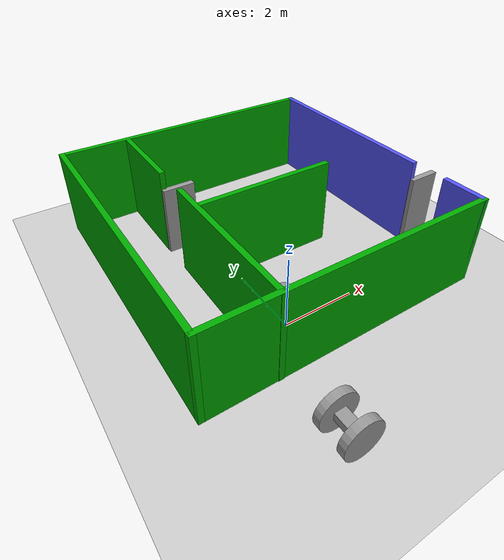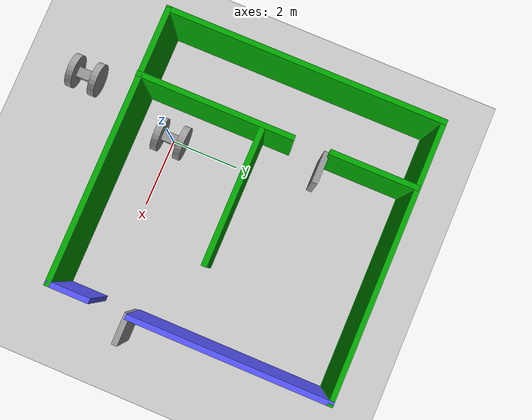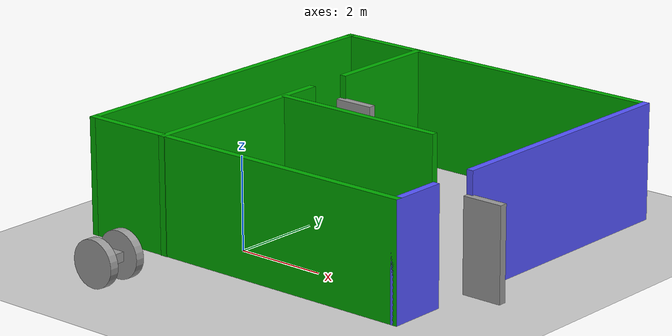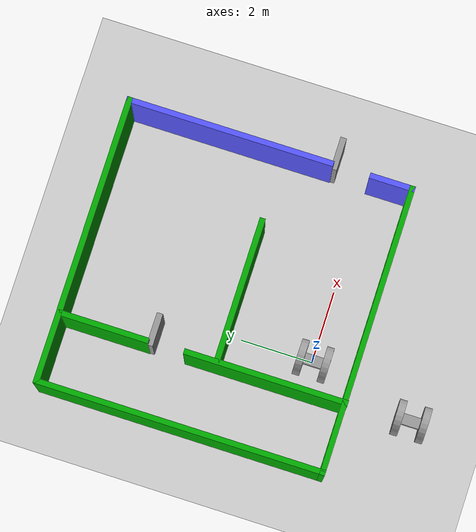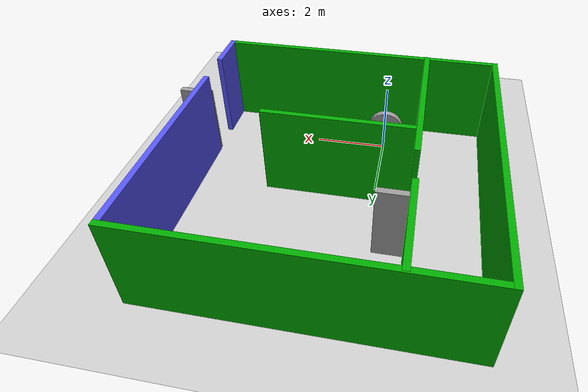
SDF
<sdf version="1.6">
 <world name="default">
  <plugin name="hello" filename="libproject1.so"/>
  <light name="sun" type="directional">
   <pose>0 0 10 0 -0 0</pose>
   <diffuse>0.8 0.8 0.8 1</diffuse>
   <specular>0.1 0.1 0.1 1</specular>
   <attenuation>
    <range>1000</range>
    <constant>0.9</constant>
    <linear>0.01</linear>
    <quadratic>0.001</quadratic>
   </attenuation>
   <direction>-0.5 0.5 -1</direction>
  </light>
  <model name="ground_plane">
   <static>1</static>
   <link name="link">
    <collision name="collision">
     <geometry><plane><normal>0 0 1</normal><size>100 100</size></plane></geometry>
     <surface><friction><ode><mu>100</mu><mu2>50</mu2></ode></friction></surface>
    </collision>
    <visual name="visual">
     <cast_shadows>0</cast_shadows>
     <geometry><plane><normal>0 0 1</normal><size>100 100</size></plane></geometry>
     <material>
      <script><uri>file://media/materials/scripts/gazebo.material</uri><name>Gazebo/Grey</name></script>
     </material>
    </visual>
   </link>
  </model>
  <gravity>0 0 -9.8</gravity>
  <magnetic_field>6e-06 2.3e-05 -4.2e-05</magnetic_field>
  <atmosphere type="adiabatic"/>
  <physics name="default_physics" default="0" type="ode">
   <max_step_size>0.001</max_step_size>
   <real_time_factor>1</real_time_factor>
   <real_time_update_rate>1000</real_time_update_rate>
  </physics>
  <scene><ambient>0.4 0.4 0.4 1</ambient><background>0.7 0.7 0.7 1</background><shadows>1</shadows></scene>
  <spherical_coordinates>
   <surface_model>EARTH_WGS84</surface_model>
   <latitude_deg>0</latitude_deg>
   <longitude_deg>0</longitude_deg>
   <elevation>0</elevation>
   <heading_deg>0</heading_deg>
  </spherical_coordinates>
  <model name="mymodel">
   <link name="link_0">
    <inertial>
     <mass>1</mass>
     <inertia>
      <ixx>0.166667</ixx>
      <ixy>0</ixy>
      <ixz>0</ixz>
      <iyy>0.166667</iyy>
      <iyz>0</iyz>
      <izz>0.166667</izz>
     </inertia>
    </inertial>
    <visual name="visual">
     <geometry><box><size>0.3 0.5 0.2</size></box></geometry>
     <material>
      <lighting>1</lighting>
      <script><uri>file://media/materials/scripts/gazebo.material</uri><name>Gazebo/Grey</name></script>
      <ambient>0.3 0.3 0.3 1</ambient>
      <diffuse>0.7 0.7 0.7 1</diffuse>
      <specular>0.01 0.01 0.01 1</specular>
      <emissive>0 0 0 1</emissive>
      <shader type="vertex"><normal_map>__default__</normal_map></shader>
     </material>
    </visual>
    <collision name="collision">
     <geometry><box><size>0.3 0.5 0.2</size></box></geometry>
     <surface>
      <friction>
       <ode><mu>1</mu><mu2>1</mu2><fdir1>0 0 0</fdir1><slip1>0</slip1><slip2>0</slip2></ode>
       <torsional>
        <coefficient>1</coefficient>
        <patch_radius>0</patch_radius>
        <surface_radius>0</surface_radius>
        <use_patch_radius>1</use_patch_radius>
        <ode><slip>0</slip></ode>
       </torsional>
      </friction>
      <bounce><restitution_coefficient>0</restitution_coefficient><threshold>1e+06</threshold></bounce>
      <contact>
       <collide_without_contact>0</collide_without_contact>
       <collide_without_contact_bitmask>1</collide_without_contact_bitmask>
       <collide_bitmask>1</collide_bitmask>
       <ode>
        <soft_cfm>0</soft_cfm>
        <soft_erp>0.2</soft_erp>
        <kp>1e+13</kp>
        <kd>1</kd>
        <max_vel>0.01</max_vel>
        <min_depth>0</min_depth>
       </ode>
       <bullet>
        <split_impulse>1</split_impulse>
        <split_impulse_penetration_threshold>-0.01</split_impulse_penetration_threshold>
        <soft_cfm>0</soft_cfm>
        <soft_erp>0.2</soft_erp>
        <kp>1e+13</kp>
        <kd>1</kd>
       </bullet>
      </contact>
     </surface>
    </collision>
   </link>
   <link name="link_1">
    <pose>0 -0.350298 0 1.5702 -0 0</pose>
    <inertial>
     <mass>1</mass>
     <inertia><ixx>0.145833</ixx><ixy>0</ixy><ixz>0</ixz><iyy>0.145833</iyy><iyz>0</iyz><izz>0.125</izz></inertia>
    </inertial>
    <visual name="visual">
     <geometry><cylinder><radius>0.5</radius><length>0.2</length></cylinder></geometry>
     <material>
      <lighting>1</lighting>
      <script><uri>file://media/materials/scripts/gazebo.material</uri><name>Gazebo/Grey</name></script>
      <ambient>0.3 0.3 0.3 1</ambient>
      <diffuse>0.7 0.7 0.7 1</diffuse>
      <specular>0.01 0.01 0.01 1</specular>
      <emissive>0 0 0 1</emissive>
      <shader type="vertex"><normal_map>__default__</normal_map></shader>
     </material>
    </visual>
    <collision name="collision">
     <geometry><cylinder><radius>0.5</radius><length>0.2</length></cylinder></geometry>
     <surface>
      <friction>
       <ode><mu>1</mu><mu2>1</mu2><fdir1>0 0 0</fdir1><slip1>0</slip1><slip2>0</slip2></ode>
       <torsional>
        <coefficient>1</coefficient>
        <patch_radius>0</patch_radius>
        <surface_radius>0</surface_radius>
        <use_patch_radius>1</use_patch_radius>
        <ode><slip>0</slip></ode>
       </torsional>
      </friction>
      <bounce><restitution_coefficient>0</restitution_coefficient><threshold>1e+06</threshold></bounce>
      <contact>
       <collide_without_contact>0</collide_without_contact>
       <collide_without_contact_bitmask>1</collide_without_contact_bitmask>
       <collide_bitmask>1</collide_bitmask>
       <ode>
        <soft_cfm>0</soft_cfm>
        <soft_erp>0.2</soft_erp>
        <kp>1e+13</kp>
        <kd>1</kd>
        <max_vel>0.01</max_vel>
        <min_depth>0</min_depth>
       </ode>
       <bullet>
        <split_impulse>1</split_impulse>
        <split_impulse_penetration_threshold>-0.01</split_impulse_penetration_threshold>
        <soft_cfm>0</soft_cfm>
        <soft_erp>0.2</soft_erp>
        <kp>1e+13</kp>
        <kd>1</kd>
       </bullet>
      </contact>
     </surface>
    </collision>
   </link>
   <link name="link_1_clone">
    <pose>0 0.350298 0 1.5702 -0 0</pose>
    <inertial>
     <mass>1</mass>
     <inertia><ixx>0.145833</ixx><ixy>0</ixy><ixz>0</ixz><iyy>0.145833</iyy><iyz>0</iyz><izz>0.125</izz></inertia>
    </inertial>
    <visual name="visual">
     <geometry><cylinder><radius>0.5</radius><length>0.2</length></cylinder></geometry>
     <material>
      <lighting>1</lighting>
      <script><uri>file://media/materials/scripts/gazebo.material</uri><name>Gazebo/Grey</name></script>
      <ambient>0.3 0.3 0.3 1</ambient>
      <diffuse>0.7 0.7 0.7 1</diffuse>
      <specular>0.01 0.01 0.01 1</specular>
      <emissive>0 0 0 1</emissive>
      <shader type="vertex"><normal_map>__default__</normal_map></shader>
     </material>
    </visual>
    <collision name="collision">
     <geometry><cylinder><radius>0.5</radius><length>0.2</length></cylinder></geometry>
     <surface>
      <friction>
       <ode><mu>1</mu><mu2>1</mu2><fdir1>0 0 0</fdir1><slip1>0</slip1><slip2>0</slip2></ode>
       <torsional>
        <coefficient>1</coefficient>
        <patch_radius>0</patch_radius>
        <surface_radius>0</surface_radius>
        <use_patch_radius>1</use_patch_radius>
        <ode><slip>0</slip></ode>
       </torsional>
      </friction>
      <bounce><restitution_coefficient>0</restitution_coefficient><threshold>1e+06</threshold></bounce>
      <contact>
       <collide_without_contact>0</collide_without_contact>
       <collide_without_contact_bitmask>1</collide_without_contact_bitmask>
       <collide_bitmask>1</collide_bitmask>
       <ode>
        <soft_cfm>0</soft_cfm>
        <soft_erp>0.2</soft_erp>
        <kp>1e+13</kp>
        <kd>1</kd>
        <max_vel>0.01</max_vel>
        <min_depth>0</min_depth>
       </ode>
       <bullet>
        <split_impulse>1</split_impulse>
        <split_impulse_penetration_threshold>-0.01</split_impulse_penetration_threshold>
        <soft_cfm>0</soft_cfm>
        <soft_erp>0.2</soft_erp>
        <kp>1e+13</kp>
        <kd>1</kd>
       </bullet>
      </contact>
     </surface>
    </collision>
   </link>
   <joint name="link_0_JOINT_0" type="revolute">
    <parent>link_0</parent>
    <child>link_1</child>
    <axis>
     <xyz>0 0 1</xyz>
     <use_parent_model_frame>0</use_parent_model_frame>
     <limit>
      <lower>-1.79769e+308</lower>
      <upper>1.79769e+308</upper>
      <effort>-1</effort>
      <velocity>-1</velocity>
     </limit>
     <dynamics>
      <spring_reference>0</spring_reference>
      <spring_stiffness>0</spring_stiffness>
      <damping>0</damping>
     </dynamics>
    </axis>
    <physics>
     <ode><limit><cfm>0</cfm><erp>0.2</erp></limit><suspension><cfm>0</cfm><erp>0.2</erp></suspension></ode>
    </physics>
   </joint>
   <joint name="link_0_JOINT_2" type="revolute">
    <parent>link_0</parent>
    <child>link_1_clone</child>
    <axis>
     <xyz>0 0 1</xyz>
     <use_parent_model_frame>0</use_parent_model_frame>
     <limit>
      <lower>-1.79769e+308</lower>
      <upper>1.79769e+308</upper>
      <effort>-1</effort>
      <velocity>-1</velocity>
     </limit>
     <dynamics>
      <spring_reference>0</spring_reference>
      <spring_stiffness>0</spring_stiffness>
      <damping>0</damping>
     </dynamics>
    </axis>
    <physics>
     <ode><limit><cfm>0</cfm><erp>0.2</erp></limit><suspension><cfm>0</cfm><erp>0.2</erp></suspension></ode>
    </physics>
   </joint>
   <static>0</static>
   <pose>0 -0.024345 0.500059 1e-06 -0 0</pose>
  </model>
  <model name="mybuilding">
   <pose>1.005 2.76825 0 0 -0 0</pose>
   <link name="Door_0">
    <collision name="Door_0_Collision">
     <geometry><box><size>0.9 0.17 2</size></box></geometry>
     <pose>0 0 1 0 -0 0</pose>
    </collision>
    <visual name="Door_0_Visual">
     <pose>0 0 1 0 -0 0</pose>
     <geometry><box><size>0.9 0.17 2</size></box></geometry>
     <material>
      <script><uri>file://media/materials/scripts/gazebo.material</uri><name>Gazebo/Grey</name></script>
     </material>
    </visual>
    <pose>-1.64471 1.42964 0 0 -0 0</pose>
   </link>
   <link name="Door_2">
    <collision name="Door_2_Collision">
     <geometry><box><size>0.9 0.17 2</size></box></geometry>
     <pose>0 0 1 0 -0 0</pose>
    </collision>
    <visual name="Door_2_Visual">
     <pose>0 0 1 0 -0 0</pose>
     <geometry><box><size>0.9 0.17 2</size></box></geometry>
     <material>
      <script><uri>file://media/materials/scripts/gazebo.material</uri><name>Gazebo/Grey</name></script>
     </material>
    </visual>
    <pose>4.32193 -1.77573 0 0 -0 0</pose>
   </link>
   <link name="Wall_0">
    <collision name="Wall_0_Collision">
     <geometry><box><size>8 0.15 2.5</size></box></geometry>
     <pose>0 0 1.25 0 -0 0</pose>
    </collision>
    <visual name="Wall_0_Visual">
     <pose>0 0 1.25 0 -0 0</pose>
     <geometry><box><size>8 0.15 2.5</size></box></geometry>
     <material>
      <script><uri>file://media/materials/scripts/gazebo.material</uri><name>Gazebo/Grey</name></script>
      <ambient>0 0.666667 0 1</ambient>
     </material>
    </visual>
    <pose>-3.925 0.006746 0 0 -0 1.5708</pose>
   </link>
   <link name="Wall_1">
    <collision name="Wall_1_Collision">
     <geometry><box><size>8 0.15 2.5</size></box></geometry>
     <pose>0 0 1.25 0 -0 0</pose>
    </collision>
    <visual name="Wall_1_Visual">
     <pose>0 0 1.25 0 -0 0</pose>
     <geometry><box><size>8 0.15 2.5</size></box></geometry>
     <material>
      <script><uri>file://media/materials/scripts/gazebo.material</uri><name>Gazebo/Grey</name></script>
      <ambient>0 0.666667 0 1</ambient>
     </material>
    </visual>
    <pose>0 3.93175 0 0 -0 0</pose>
   </link>
   <link name="Wall_13">
    <collision name="Wall_13_Collision">
     <geometry><box><size>1.25 0.15 2.5</size></box></geometry>
     <pose>0 0 1.25 0 -0 0</pose>
    </collision>
    <visual name="Wall_13_Visual">
     <pose>0 0 1.25 0 -0 0</pose>
     <geometry><box><size>1.25 0.15 2.5</size></box></geometry>
     <material>
      <script><uri>file://media/materials/scripts/gazebo.material</uri><name>Gazebo/Grey</name></script>
      <ambient>0.333333 0.333333 1 1</ambient>
     </material>
    </visual>
    <pose>3.925 -3.36825 0 0 -0 1.5708</pose>
   </link>
   <link name="Wall_15">
    <collision name="Wall_15_Collision">
     <geometry><box><size>4 0.15 2.5</size></box></geometry>
     <pose>0 0 1.25 0 -0 0</pose>
    </collision>
    <visual name="Wall_15_Visual">
     <pose>0 0 1.25 0 -0 0</pose>
     <geometry><box><size>4 0.15 2.5</size></box></geometry>
     <material>
      <script><uri>file://media/materials/scripts/gazebo.material</uri><name>Gazebo/Grey</name></script>
      <ambient>0 0.666667 0 1</ambient>
     </material>
    </visual>
    <pose>-0.02369 -0.400236 0 0 -0 0</pose>
   </link>
   <link name="Wall_2">
    <collision name="Wall_2_Collision">
     <geometry><box><size>5.75 0.15 2.5</size></box></geometry>
     <pose>0 0 1.25 0 -0 0</pose>
    </collision>
    <visual name="Wall_2_Visual">
     <pose>0 0 1.25 0 -0 0</pose>
     <geometry><box><size>5.75 0.15 2.5</size></box></geometry>
     <material>
      <script><uri>file://media/materials/scripts/gazebo.material</uri><name>Gazebo/Grey</name></script>
      <ambient>0.333333 0.333333 1 1</ambient>
     </material>
    </visual>
    <pose>3.925 1.13175 0 0 0 -1.5708</pose>
   </link>
   <link name="Wall_4">
    <collision name="Wall_4_Collision">
     <geometry><box><size>8 0.15 2.5</size></box></geometry>
     <pose>0 0 1.25 0 -0 0</pose>
    </collision>
    <visual name="Wall_4_Visual">
     <pose>0 0 1.25 0 -0 0</pose>
     <geometry><box><size>8 0.15 2.5</size></box></geometry>
     <material>
      <script><uri>file://media/materials/scripts/gazebo.material</uri><name>Gazebo/Grey</name></script>
      <ambient>0 0.666667 0 1</ambient>
     </material>
    </visual>
    <pose>0 -3.91825 0 0 -0 0</pose>
   </link>
   <link name="Wall_6">
    <collision name="Wall_6_Collision">
     <geometry><box><size>2.5 0.15 2.5</size></box></geometry>
     <pose>0 0 1.25 0 -0 0</pose>
    </collision>
    <visual name="Wall_6_Visual">
     <pose>0 0 1.25 0 -0 0</pose>
     <geometry><box><size>2.5 0.15 2.5</size></box></geometry>
     <material>
      <script><uri>file://media/materials/scripts/gazebo.material</uri><name>Gazebo/Grey</name></script>
      <ambient>0 0.666667 0 1</ambient>
     </material>
    </visual>
    <pose>-2.03367 2.71762 0 0 0 -1.5708</pose>
   </link>
   <link name="Wall_9">
    <collision name="Wall_9_Collision">
     <geometry><box><size>4.5 0.15 2.5</size></box></geometry>
     <pose>0 0 1.25 0 -0 0</pose>
    </collision>
    <visual name="Wall_9_Visual">
     <pose>0 0 1.25 0 -0 0</pose>
     <geometry><box><size>4.5 0.15 2.5</size></box></geometry>
     <material>
      <script><uri>file://media/materials/scripts/gazebo.material</uri><name>Gazebo/Grey</name></script>
      <ambient>0 0.666667 0 1</ambient>
     </material>
    </visual>
    <pose>-2.00881 -1.75675 0 0 0 -1.5708</pose>
   </link>
   <static>1</static>
  </model>
  <model name="mymodel_clone">
   <link name="link_0">
    <inertial>
     <mass>1</mass>
     <inertia>
      <ixx>0.166667</ixx>
      <ixy>0</ixy>
      <ixz>0</ixz>
      <iyy>0.166667</iyy>
      <iyz>0</iyz>
      <izz>0.166667</izz>
     </inertia>
    </inertial>
    <visual name="visual">
     <geometry><box><size>0.3 0.5 0.2</size></box></geometry>
     <material>
      <lighting>1</lighting>
      <script><uri>file://media/materials/scripts/gazebo.material</uri><name>Gazebo/Grey</name></script>
      <ambient>0.3 0.3 0.3 1</ambient>
      <diffuse>0.7 0.7 0.7 1</diffuse>
      <specular>0.01 0.01 0.01 1</specular>
      <emissive>0 0 0 1</emissive>
      <shader type="vertex"><normal_map>__default__</normal_map></shader>
     </material>
    </visual>
    <collision name="collision">
     <geometry><box><size>0.3 0.5 0.2</size></box></geometry>
     <surface>
      <friction>
       <ode><mu>1</mu><mu2>1</mu2><fdir1>0 0 0</fdir1><slip1>0</slip1><slip2>0</slip2></ode>
       <torsional>
        <coefficient>1</coefficient>
        <patch_radius>0</patch_radius>
        <surface_radius>0</surface_radius>
        <use_patch_radius>1</use_patch_radius>
        <ode><slip>0</slip></ode>
       </torsional>
      </friction>
      <bounce><restitution_coefficient>0</restitution_coefficient><threshold>1e+06</threshold></bounce>
      <contact>
       <collide_without_contact>0</collide_without_contact>
       <collide_without_contact_bitmask>1</collide_without_contact_bitmask>
       <collide_bitmask>1</collide_bitmask>
       <ode>
        <soft_cfm>0</soft_cfm>
        <soft_erp>0.2</soft_erp>
        <kp>1e+13</kp>
        <kd>1</kd>
        <max_vel>0.01</max_vel>
        <min_depth>0</min_depth>
       </ode>
       <bullet>
        <split_impulse>1</split_impulse>
        <split_impulse_penetration_threshold>-0.01</split_impulse_penetration_threshold>
        <soft_cfm>0</soft_cfm>
        <soft_erp>0.2</soft_erp>
        <kp>1e+13</kp>
        <kd>1</kd>
       </bullet>
      </contact>
     </surface>
    </collision>
   </link>
   <link name="link_1">
    <pose>0 -0.350298 0 1.5702 -0 0</pose>
    <inertial>
     <mass>1</mass>
     <inertia><ixx>0.145833</ixx><ixy>0</ixy><ixz>0</ixz><iyy>0.145833</iyy><iyz>0</iyz><izz>0.125</izz></inertia>
    </inertial>
    <visual name="visual">
     <geometry><cylinder><radius>0.5</radius><length>0.2</length></cylinder></geometry>
     <material>
      <lighting>1</lighting>
      <script><uri>file://media/materials/scripts/gazebo.material</uri><name>Gazebo/Grey</name></script>
      <ambient>0.3 0.3 0.3 1</ambient>
      <diffuse>0.7 0.7 0.7 1</diffuse>
      <specular>0.01 0.01 0.01 1</specular>
      <emissive>0 0 0 1</emissive>
      <shader type="vertex"><normal_map>__default__</normal_map></shader>
     </material>
    </visual>
    <collision name="collision">
     <geometry><cylinder><radius>0.5</radius><length>0.2</length></cylinder></geometry>
     <surface>
      <friction>
       <ode><mu>1</mu><mu2>1</mu2><fdir1>0 0 0</fdir1><slip1>0</slip1><slip2>0</slip2></ode>
       <torsional>
        <coefficient>1</coefficient>
        <patch_radius>0</patch_radius>
        <surface_radius>0</surface_radius>
        <use_patch_radius>1</use_patch_radius>
        <ode><slip>0</slip></ode>
       </torsional>
      </friction>
      <bounce><restitution_coefficient>0</restitution_coefficient><threshold>1e+06</threshold></bounce>
      <contact>
       <collide_without_contact>0</collide_without_contact>
       <collide_without_contact_bitmask>1</collide_without_contact_bitmask>
       <collide_bitmask>1</collide_bitmask>
       <ode>
        <soft_cfm>0</soft_cfm>
        <soft_erp>0.2</soft_erp>
        <kp>1e+13</kp>
        <kd>1</kd>
        <max_vel>0.01</max_vel>
        <min_depth>0</min_depth>
       </ode>
       <bullet>
        <split_impulse>1</split_impulse>
        <split_impulse_penetration_threshold>-0.01</split_impulse_penetration_threshold>
        <soft_cfm>0</soft_cfm>
        <soft_erp>0.2</soft_erp>
        <kp>1e+13</kp>
        <kd>1</kd>
       </bullet>
      </contact>
     </surface>
    </collision>
   </link>
   <link name="link_1_clone">
    <pose>0 0.350298 0 1.5702 -0 0</pose>
    <inertial>
     <mass>1</mass>
     <inertia><ixx>0.145833</ixx><ixy>0</ixy><ixz>0</ixz><iyy>0.145833</iyy><iyz>0</iyz><izz>0.125</izz></inertia>
    </inertial>
    <visual name="visual">
     <geometry><cylinder><radius>0.5</radius><length>0.2</length></cylinder></geometry>
     <material>
      <lighting>1</lighting>
      <script><uri>file://media/materials/scripts/gazebo.material</uri><name>Gazebo/Grey</name></script>
      <ambient>0.3 0.3 0.3 1</ambient>
      <diffuse>0.7 0.7 0.7 1</diffuse>
      <specular>0.01 0.01 0.01 1</specular>
      <emissive>0 0 0 1</emissive>
      <shader type="vertex"><normal_map>__default__</normal_map></shader>
     </material>
    </visual>
    <collision name="collision">
     <geometry><cylinder><radius>0.5</radius><length>0.2</length></cylinder></geometry>
     <surface>
      <friction>
       <ode><mu>1</mu><mu2>1</mu2><fdir1>0 0 0</fdir1><slip1>0</slip1><slip2>0</slip2></ode>
       <torsional>
        <coefficient>1</coefficient>
        <patch_radius>0</patch_radius>
        <surface_radius>0</surface_radius>
        <use_patch_radius>1</use_patch_radius>
        <ode><slip>0</slip></ode>
       </torsional>
      </friction>
      <bounce><restitution_coefficient>0</restitution_coefficient><threshold>1e+06</threshold></bounce>
      <contact>
       <collide_without_contact>0</collide_without_contact>
       <collide_without_contact_bitmask>1</collide_without_contact_bitmask>
       <collide_bitmask>1</collide_bitmask>
       <ode>
        <soft_cfm>0</soft_cfm>
        <soft_erp>0.2</soft_erp>
        <kp>1e+13</kp>
        <kd>1</kd>
        <max_vel>0.01</max_vel>
        <min_depth>0</min_depth>
       </ode>
       <bullet>
        <split_impulse>1</split_impulse>
        <split_impulse_penetration_threshold>-0.01</split_impulse_penetration_threshold>
        <soft_cfm>0</soft_cfm>
        <soft_erp>0.2</soft_erp>
        <kp>1e+13</kp>
        <kd>1</kd>
       </bullet>
      </contact>
     </surface>
    </collision>
   </link>
   <joint name="link_0_JOINT_0" type="revolute">
    <parent>link_0</parent>
    <child>link_1</child>
    <axis>
     <xyz>0 0 1</xyz>
     <use_parent_model_frame>0</use_parent_model_frame>
     <limit>
      <lower>-1.79769e+308</lower>
      <upper>1.79769e+308</upper>
      <effort>-1</effort>
      <velocity>-1</velocity>
     </limit>
     <dynamics>
      <spring_reference>0</spring_reference>
      <spring_stiffness>0</spring_stiffness>
      <damping>0</damping>
     </dynamics>
    </axis>
    <physics>
     <ode><limit><cfm>0</cfm><erp>0.2</erp></limit><suspension><cfm>0</cfm><erp>0.2</erp></suspension></ode>
    </physics>
   </joint>
   <joint name="link_0_JOINT_2" type="revolute">
    <parent>link_0</parent>
    <child>link_1_clone</child>
    <axis>
     <xyz>0 0 1</xyz>
     <use_parent_model_frame>0</use_parent_model_frame>
     <limit>
      <lower>-1.79769e+308</lower>
      <upper>1.79769e+308</upper>
      <effort>-1</effort>
      <velocity>-1</velocity>
     </limit>
     <dynamics>
      <spring_reference>0</spring_reference>
      <spring_stiffness>0</spring_stiffness>
      <damping>0</damping>
     </dynamics>
    </axis>
    <physics>
     <ode><limit><cfm>0</cfm><erp>0.2</erp></limit><suspension><cfm>0</cfm><erp>0.2</erp></suspension></ode>
    </physics>
   </joint>
   <static>0</static>
   <pose>-0.752855 -3.00685 0.50006 0 -0 0</pose>
  </model>
 </world>
</sdf>
